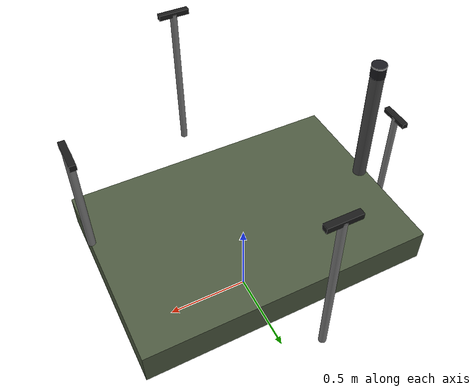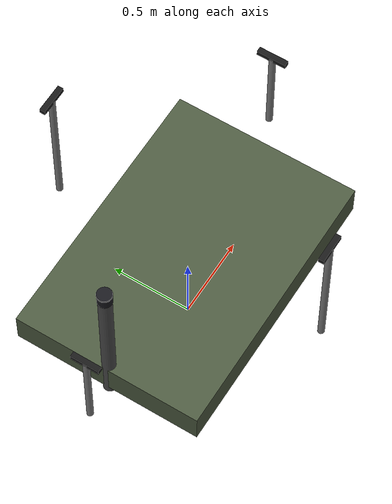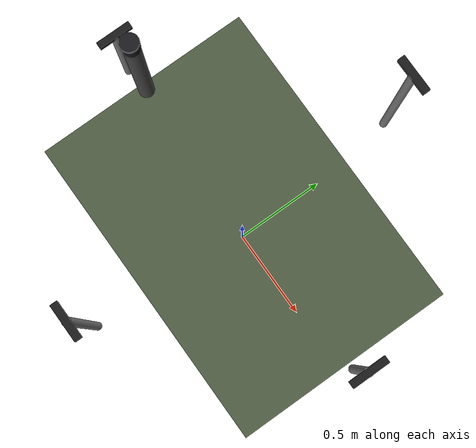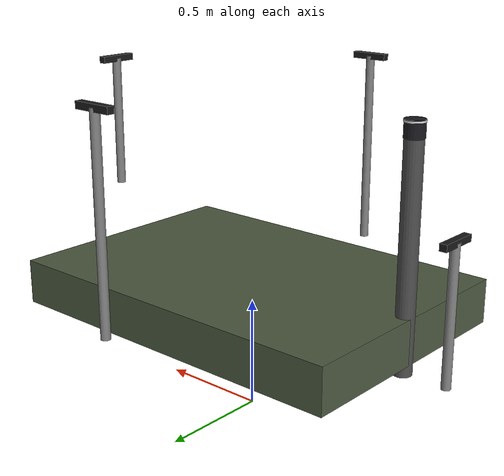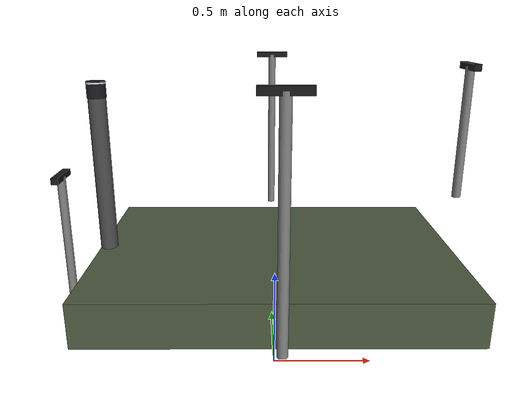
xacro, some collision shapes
<?xml version="1.0"?>
<!-- UGV PINDAD — TRACKED VEHICLE WITH OUSTER OS1-128 (Gz Fortress)                     -->
<!-- Tank-style tracked vehicle. STL mesh has all visual content.                         -->
<!-- STL ANALYSIS RESULTS:                                                                -->
<!--   Mesh extents (m): X=0→2.390, Y=0→2.308, Z=0→2.243                                -->
<!--   Mesh center:      (1.195, 1.154, 1.122)                                           -->
<!--   Bottom Z = 0.0 (track bottoms at origin)                                          -->
<!--   Front of vehicle faces LOW X (toward X=0 in STL)                                  -->
<!--   Left track Y center: 2.035, Right track Y center: 0.277                           -->
<!--   Track separation: 1.758m, half = 0.879m                                           -->
<!--   Ground contact X range: 0.523 → 1.898 (centered: ±0.69)                           -->
<!-- TRANSFORM APPLIED:                                                                   -->
<!--   1. Rotate mesh 180° (pi) around Z so front faces +X (ROS forward)                 -->
<!--   2. Translate (1.195, 1.154, -wheel_radius) to center and ground-align              -->
<!-- WHEEL LAYOUT (3 per side, all invisible):                                            -->
<!--   Rear  (x=-0.70) = DRIVE SPROCKETS (high friction, powered by diff-drive)          -->
<!--   Mid   (x= 0.00) = PASSIVE rollers (low friction)                                  -->
<!--   Front (x=+0.67) = PASSIVE idlers  (low friction)                                  -->
<!-- LIDAR: Ouster OS1-128 (128 channels | 45° VFOV | 2048 H-samples | 120m range)      -->
<robot xmlns:xacro="http://www.ros.org/wiki/xacro" name="ugv_pindad_ouster">

  <!-- 1. PROPERTIES (from STL analysis)                                   -->

  <!-- Chassis -->
  <xacro:property name="chassis_length"   value="2.39"/>
  <xacro:property name="chassis_width"    value="2.31"/>
  <xacro:property name="chassis_height"   value="0.40"/>
  <xacro:property name="chassis_mass"     value="200.0"/>
  <xacro:property name="total_height"     value="2.2434"/>

  <!-- Drive wheels — sized to match mesh road wheels -->
  <xacro:property name="wheel_radius"     value="0.20"/>
  <xacro:property name="wheel_width"      value="0.35"/>
  <xacro:property name="drive_wheel_mass" value="20.0"/>
  <xacro:property name="idle_wheel_mass"  value="5.0"/>

  <!-- Wheel placement (from STL ground-contact & track center analysis) -->
  <xacro:property name="wheel_y_offset"   value="0.879"/>
  <xacro:property name="rear_x"           value="-0.70"/>
  <xacro:property name="mid_x"            value="0.00"/>
  <xacro:property name="front_x"          value="0.67"/>

  <!-- Mesh (STL center + rotation offsets) -->
  <xacro:property name="mesh_scale"       value="0.001 0.001 0.001"/>

  <!-- MACRO: Passive wheel (invisible, LOW friction for pivot turns)       -->
  <xacro:macro name="passive_wheel" params="name x_pos y_pos">
    <link name="${name}_link">
      <collision>
        <origin xyz="0 0 0" rpy="${pi/2} 0 0"/>
        <geometry>
          <cylinder radius="${wheel_radius}" length="${wheel_width}"/>
        </geometry>
      </collision>
      <inertial>
        <mass value="${idle_wheel_mass}"/>
        <origin xyz="0 0 0"/>
        <inertia
          ixx="${(1.0/12.0) * idle_wheel_mass * (3.0 * wheel_radius * wheel_radius + wheel_width * wheel_width)}"
          ixy="0" ixz="0"
          iyy="${(1.0/12.0) * idle_wheel_mass * (3.0 * wheel_radius * wheel_radius + wheel_width * wheel_width)}"
          iyz="0"
          izz="${0.5 * idle_wheel_mass * wheel_radius * wheel_radius}"/>
      </inertial>
    </link>

    <joint name="${name}_joint" type="continuous">
      <parent link="base_link"/>
      <child  link="${name}_link"/>
      <origin xyz="${x_pos} ${y_pos} 0" rpy="0 0 0"/>
      <axis xyz="0 1 0"/>
      <dynamics damping="0.1" friction="0.1"/>
      <limit effort="0" velocity="20.0"/>
    </joint>

    <gazebo reference="${name}_link">
      <mu1>0.3</mu1>
      <mu2>0.1</mu2>
      <kp>1e6</kp>
      <kd>100</kd>
    </gazebo>
  </xacro:macro>

  <!-- 2. BASE LINKS                                                       -->

  <link name="base_footprint"/>

  <joint name="base_footprint_joint" type="fixed">
    <parent link="base_footprint"/>
    <child  link="base_link"/>
    <!-- Lift base_link by wheel_radius so wheel bottoms sit at z=0 (ground) -->
    <origin xyz="0 0 ${wheel_radius}" rpy="0 0 0"/>
  </joint>

  <link name="base_link">
    <!-- VISUAL: STL mesh, rotated 180° so front faces +X (ROS forward) -->
    <!-- After rotation: translate (1.195, 1.154, -wheel_radius) to center -->
    <!-- and align mesh bottom Z=0 with ground plane                       -->
    <visual>
      <origin xyz="1.195 1.154 ${-wheel_radius}" rpy="0 0 ${pi}"/>
      <geometry>
        <mesh filename="file://$(find ugv_pindad_bringup)/meshes/UGV.stl" scale="${mesh_scale}"/>
      </geometry>
      <material name="military_green">
        <color rgba="0.30 0.35 0.25 1.0"/>
      </material>
    </visual>

    <!-- Collision: box raised well above wheel contact to avoid drag -->
    <collision>
      <origin xyz="0 0 ${chassis_height / 2.0 + 0.15}" rpy="0 0 0"/>
      <geometry>
        <box size="${chassis_length * 0.7} ${chassis_width * 0.5} ${chassis_height * 0.5}"/>
      </geometry>
    </collision>

    <!-- Inertia: center of mass LOW for stability -->
    <inertial>
      <mass value="${chassis_mass}"/>
      <origin xyz="0 0 -0.05" rpy="0 0 0"/>
      <inertia
        ixx="${(1.0/12.0) * chassis_mass * (chassis_width * chassis_width + chassis_height * chassis_height)}"
        ixy="0" ixz="0"
        iyy="${(1.0/12.0) * chassis_mass * (chassis_length * chassis_length + chassis_height * chassis_height)}"
        iyz="0"
        izz="${(1.0/12.0) * chassis_mass * (chassis_length * chassis_length + chassis_width * chassis_width)}"/>
    </inertial>
  </link>

  <gazebo reference="base_link">
    <mu1>0.5</mu1>
    <mu2>0.5</mu2>
    <kp>1e6</kp>
    <kd>100</kd>
    <visual>
      <material>
        <ambient>0.30 0.35 0.25 1.0</ambient>
        <diffuse>0.30 0.35 0.25 1.0</diffuse>
        <specular>0.1 0.1 0.1 1.0</specular>
        <pbr>
          <metal>
            <albedo>0.30 0.35 0.25 1.0</albedo>
            <metalness>0.2</metalness>
            <roughness>0.5</roughness>
          </metal>
        </pbr>
      </material>
    </visual>
  </gazebo>

  <!-- 3. REAR DRIVE WHEELS (invisible, HIGH friction — powered)            -->

  <!-- Rear Left Drive Sprocket -->
  <link name="rear_left_wheel_link">
    <collision>
      <origin xyz="0 0 0" rpy="${pi/2} 0 0"/>
      <geometry>
        <cylinder radius="${wheel_radius}" length="${wheel_width}"/>
      </geometry>
    </collision>
    <inertial>
      <mass value="${drive_wheel_mass}"/>
      <origin xyz="0 0 0"/>
      <inertia
        ixx="${(1.0/12.0) * drive_wheel_mass * (3.0 * wheel_radius * wheel_radius + wheel_width * wheel_width)}"
        ixy="0" ixz="0"
        iyy="${(1.0/12.0) * drive_wheel_mass * (3.0 * wheel_radius * wheel_radius + wheel_width * wheel_width)}"
        iyz="0"
        izz="${0.5 * drive_wheel_mass * wheel_radius * wheel_radius}"/>
    </inertial>
  </link>

  <joint name="rear_left_wheel_joint" type="continuous">
    <parent link="base_link"/>
    <child  link="rear_left_wheel_link"/>
    <origin xyz="${rear_x} ${wheel_y_offset} 0" rpy="0 0 0"/>
    <axis xyz="0 1 0"/>
    <dynamics damping="0.5" friction="1.0"/>
    <limit effort="200.0" velocity="20.0"/>
  </joint>

  <gazebo reference="rear_left_wheel_link">
    <mu1>3.0</mu1>
    <mu2>1.5</mu2>
    <kp>1e7</kp>
    <kd>100</kd>
    <fdir1>1 0 0</fdir1>
  </gazebo>

  <!-- Rear Right Drive Sprocket -->
  <link name="rear_right_wheel_link">
    <collision>
      <origin xyz="0 0 0" rpy="${pi/2} 0 0"/>
      <geometry>
        <cylinder radius="${wheel_radius}" length="${wheel_width}"/>
      </geometry>
    </collision>
    <inertial>
      <mass value="${drive_wheel_mass}"/>
      <origin xyz="0 0 0"/>
      <inertia
        ixx="${(1.0/12.0) * drive_wheel_mass * (3.0 * wheel_radius * wheel_radius + wheel_width * wheel_width)}"
        ixy="0" ixz="0"
        iyy="${(1.0/12.0) * drive_wheel_mass * (3.0 * wheel_radius * wheel_radius + wheel_width * wheel_width)}"
        iyz="0"
        izz="${0.5 * drive_wheel_mass * wheel_radius * wheel_radius}"/>
    </inertial>
  </link>

  <joint name="rear_right_wheel_joint" type="continuous">
    <parent link="base_link"/>
    <child  link="rear_right_wheel_link"/>
    <origin xyz="${rear_x} ${-wheel_y_offset} 0" rpy="0 0 0"/>
    <axis xyz="0 1 0"/>
    <dynamics damping="0.5" friction="1.0"/>
    <limit effort="200.0" velocity="20.0"/>
  </joint>

  <gazebo reference="rear_right_wheel_link">
    <mu1>3.0</mu1>
    <mu2>1.5</mu2>
    <kp>1e7</kp>
    <kd>100</kd>
    <fdir1>1 0 0</fdir1>
  </gazebo>

  <!-- 4. PASSIVE WHEELS (invisible, LOW friction — support vehicle)        -->

  <!-- Middle pair -->
  <xacro:passive_wheel name="mid_left_wheel"    x_pos="${mid_x}"   y_pos="${wheel_y_offset}"/>
  <xacro:passive_wheel name="mid_right_wheel"   x_pos="${mid_x}"   y_pos="${-wheel_y_offset}"/>

  <!-- Front pair (idlers) -->
  <xacro:passive_wheel name="front_left_wheel"  x_pos="${front_x}" y_pos="${wheel_y_offset}"/>
  <xacro:passive_wheel name="front_right_wheel" x_pos="${front_x}" y_pos="${-wheel_y_offset}"/>

  <!-- 5. SENSOR: Ouster OS1-128                                           -->
  <!-- Placed on top of the vehicle (above turret) on rear mast            -->
  <!-- OS1-128 specs:                                                      -->
  <!--   128 channels, ±22.5° VFOV (45° total), 360° HFOV, 120m range    -->
  <!--   2048 horizontal samples = 0.18° angular resolution               -->
  <!--   Total points per scan: 2048 × 128 = 262,144                     -->
  <!--   Physical: 85.3mm diameter × 73.5mm height, 447g                  -->

  <joint name="lidar_joint" type="fixed">
    <parent link="base_link"/>
    <child link="lidar_link"/>
    <!-- REAR MIDDLE MAST (Shortened to 1m) -->
    <!-- Rear deck Z ~ 0.17m. Mast 1.0m. LiDAR Z = 1.20m -->
    <origin xyz="-0.80 0.0 1.20" rpy="0 0 0"/>
  </joint>

  <link name="lidar_link">
    <!-- Ouster OS1-128 body: 85.3mm dia × 73.5mm height -->
    <visual>
      <geometry>
        <cylinder radius="0.04265" length="0.0735"/>
      </geometry>
      <material name="os1_dark">
        <color rgba="0.10 0.10 0.12 1.0"/>
      </material>
    </visual>
    <!-- Top ring accent (white stripe like real OS1) -->
    <visual>
      <origin xyz="0 0 0.030" rpy="0 0 0"/>
      <geometry>
        <cylinder radius="0.044" length="0.008"/>
      </geometry>
      <material name="os1_accent">
        <color rgba="0.85 0.85 0.85 1.0"/>
      </material>
    </visual>
    <!-- MAST STAND (1.0m) -->
    <visual>
      <!-- Length 1.0m, origin at -0.5 (goes down from Z=1.20 to Z=0.20) -->
      <!-- Passes through deck at Z=0.17 -->
      <origin xyz="0 0 -0.50" rpy="0 0 0"/>
      <geometry>
        <cylinder radius="0.04" length="1.0"/>
      </geometry>
       <material name="os1_mount">
        <color rgba="0.3 0.3 0.3 1.0"/>
      </material>
    </visual>
    <collision>
      <geometry>
        <cylinder radius="0.04265" length="0.0735"/>
      </geometry>
    </collision>
    <inertial>
      <mass value="0.447"/>
      <inertia ixx="0.001" ixy="0" ixz="0" iyy="0.001" iyz="0" izz="0.001"/>
    </inertial>
  </link>

  <!-- 6. CAMERAS: 4x ZED 2i Depth Cameras                                 -->

  <!-- MACRO: ZED Camera (Visual + Sensor) -->
  <xacro:macro name="zed_camera" params="name x y z r p yaw mast_height:=0">
    <link name="${name}_link">
      <visual>
        <geometry>
          <!-- ZED 2i dims: 175 x 30 x 33 mm approx -->
          <box size="0.033 0.175 0.03"/>
        </geometry>
        <material name="zed_black">
          <color rgba="0.1 0.1 0.1 1.0"/>
        </material>
      </visual>
      <collision>
        <geometry>
          <box size="0.033 0.175 0.03"/>
        </geometry>
      </collision>
      <inertial>
        <mass value="0.2"/>
        <inertia ixx="0.001" ixy="0" ixz="0" iyy="0.001" iyz="0" izz="0.001"/>
      </inertial>

      <!-- OPTIONAL MAST -->
      <xacro:if value="${mast_height > 0}">
        <visual>
          <origin xyz="0 0 ${-mast_height/2}" rpy="0 0 0"/>
          <geometry>
            <cylinder radius="0.02" length="${mast_height}"/>
          </geometry>
          <material name="mast_grey">
            <color rgba="0.5 0.5 0.5 1.0"/>
          </material>
        </visual>
      </xacro:if>
    </link>

    <joint name="${name}_joint" type="fixed">
      <parent link="base_link"/>
      <child link="${name}_link"/>
      <origin xyz="${x} ${y} ${z}" rpy="${r} ${p} ${yaw}"/>
    </joint>

    <gazebo reference="${name}_link">
      <!-- 1. RGB CAMERA SENSOR -->
      <sensor name="${name}_rgb_sensor" type="camera">
        <pose>0 0 0 0 0 0</pose>
        <always_on>true</always_on>
        <update_rate>30</update_rate>
        <camera>
          <horizontal_fov>1.91986</horizontal_fov> <!-- 110 degrees -->
          <image>
            <width>640</width>
            <height>360</height>
            <format>R8G8B8</format>
          </image>
          <clip>
            <near>0.3</near>
            <far>20.0</far>
          </clip>
        </camera>
        <topic>${name}/rgb/image_raw</topic>
        <topic_camera_info>${name}/rgb/camera_info</topic_camera_info>
      </sensor>

      <!-- 2. DEPTH CAMERA SENSOR (Only for Depth Map) -->
      <sensor name="${name}_depth_sensor" type="depth_camera">
        <pose>0 0 0 0 0 0</pose>
        <always_on>true</always_on>
        <update_rate>30</update_rate>
        <camera>
          <horizontal_fov>1.91986</horizontal_fov>
          <image>
            <width>640</width>
            <height>360</height>
            <format>R_FLOAT32</format>
          </image>
          <clip>
            <near>0.3</near>
            <far>20.0</far>
          </clip>
        </camera>
        <!-- Use main topic for depth output in this split configuration -->
        <topic>${name}/depth/image_raw</topic>
        <topic_camera_info>${name}/depth/camera_info</topic_camera_info>
      </sensor>
    </gazebo>
  </xacro:macro>

  <!-- INSTANTIATE CAMERAS -->
  <!-- Storage Area: Rear Bed (-0.1 to -1.0) -->
  <!-- Increased Mast to 0.6m to clear bed walls (Total Z ~ 1.0m) -->

  <!-- Front: Moved to Front Deck (X=0.85) as requested -->
  <xacro:zed_camera name="front_camera" x="0.85" y="0.0" z="1.30" r="0" p="0" yaw="0" mast_height="0.6"/>

  <!-- Rear: Rear of Bed (X=-1.0) -->
  <xacro:zed_camera name="rear_camera" x="-1.0" y="0.0" z="0.80" r="0" p="0" yaw="${pi}" mast_height="0.6"/>

  <!-- Left: Center of UGV (X=0.0), Side (Y=0.85), Height 1.30 (Clearance) -->
  <xacro:zed_camera name="left_camera" x="0.0" y="0.85" z="1.30" r="0" p="0" yaw="${pi/2}" mast_height="0.9"/>

  <!-- Right: Center of UGV (X=0.0), Side (Y=-0.85), Height 1.30 -->
  <xacro:zed_camera name="right_camera" x="0.0" y="-0.85" z="1.30" r="0" p="0" yaw="${-pi/2}" mast_height="0.9"/>

  <!-- 7. GZ FORTRESS PLUGINS                                              -->

  <!-- Diff Drive: rear sprockets only -->
  <gazebo>
    <plugin filename="ignition-gazebo-diff-drive-system" name="ignition::gazebo::systems::DiffDrive">
      <left_joint>rear_left_wheel_joint</left_joint>
      <right_joint>rear_right_wheel_joint</right_joint>
      <wheel_separation>${wheel_y_offset * 2.0}</wheel_separation>
      <wheel_radius>${wheel_radius}</wheel_radius>
      <max_linear_acceleration>5.0</max_linear_acceleration>
      <min_linear_acceleration>-5.0</min_linear_acceleration>
      <max_angular_acceleration>4.0</max_angular_acceleration>
      <min_angular_acceleration>-4.0</min_angular_acceleration>
      <max_linear_velocity>6.0</max_linear_velocity>
      <max_angular_velocity>4.0</max_angular_velocity>
      <topic>cmd_vel</topic>
      <odom_topic>odom</odom_topic>
      <tf_topic>tf</tf_topic>
      <frame_id>odom</frame_id>
      <child_frame_id>base_footprint</child_frame_id>
      <odom_publish_frequency>50</odom_publish_frequency>
    </plugin>
  </gazebo>

  <!-- Joint State Publisher -->
  <gazebo>
    <plugin filename="ignition-gazebo-joint-state-publisher-system" name="ignition::gazebo::systems::JointStatePublisher">
      <joint_name>rear_left_wheel_joint</joint_name>
      <joint_name>rear_right_wheel_joint</joint_name>
      <joint_name>mid_left_wheel_joint</joint_name>
      <joint_name>mid_right_wheel_joint</joint_name>
      <joint_name>front_left_wheel_joint</joint_name>
      <joint_name>front_right_wheel_joint</joint_name>
      <update_rate>50</update_rate>
      <topic>joint_states</topic>
    </plugin>
  </gazebo>

  <!-- OUSTER OS1-128 (gpu_lidar)                                          -->
  <!-- 128 channels | 2048 H-samples | ±22.5° VFOV | 120m range          -->
  <!-- Total: 262,144 points/scan @ 10 Hz                                 -->
  <!-- Noise: ±3mm (σ=0.003)  —  much lower than VLP-16's 8mm            -->
  <gazebo reference="lidar_link">
    <sensor name="ouster_os1_128" type="gpu_lidar">
      <pose>0 0 0 0 0 0</pose>
      <always_on>true</always_on>
      <update_rate>10</update_rate>
      <visualize>true</visualize>
      <topic>lidar/points</topic>
      <ray>
        <scan>
          <horizontal>
            <samples>2048</samples>
            <resolution>1</resolution>
            <min_angle>-3.14159265</min_angle>
            <max_angle>3.14159265</max_angle>
          </horizontal>
          <vertical>
            <samples>128</samples>
            <resolution>1</resolution>
            <min_angle>-0.3927</min_angle>
            <max_angle>0.3927</max_angle>
          </vertical>
        </scan>
        <range>
          <min>0.8</min>
          <max>120.0</max>
          <resolution>0.003</resolution>
        </range>
        <noise>
          <type>gaussian</type>
          <mean>0.0</mean>
          <stddev>0.003</stddev>
        </noise>
      </ray>
    </sensor>
  </gazebo>

</robot>
